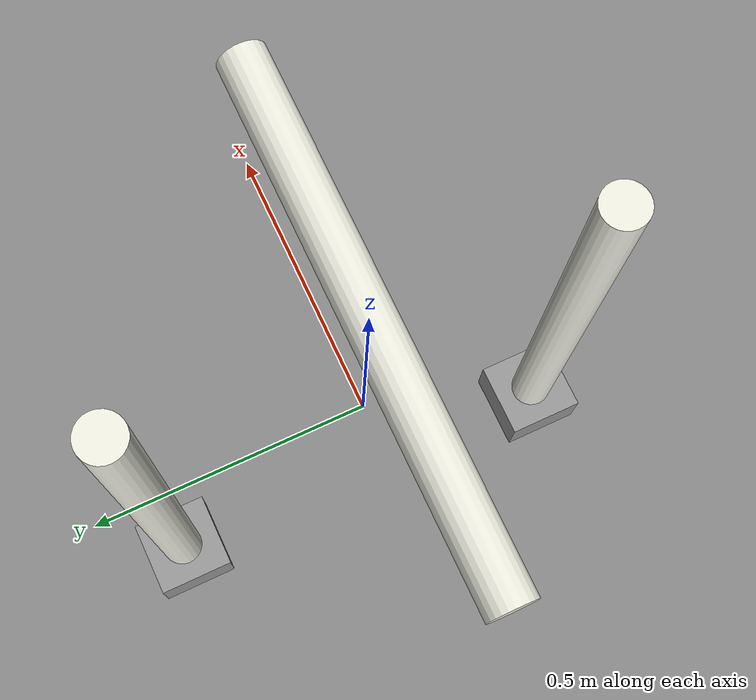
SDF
<?xml version="1.0" ?>
<sdf version="1.8">
  <model name="underwater_gate">
    <static>true</static>
    <pose>0 0 0 0 0 0</pose>

    <!-- Left Vertical Post -->
    <link name="left_post">
      <pose>0 -0.4 0 0 0 0</pose>
      <collision name="left_post_collision">
        <geometry>
          <cylinder>
            <radius>0.04</radius>
            <length>1.0</length>
          </cylinder>
        </geometry>
      </collision>
      <visual name="left_post_visual">
        <geometry>
          <cylinder>
            <radius>0.04</radius>
            <length>1.0</length>
          </cylinder>
        </geometry>
        <material>
          <ambient>0.95 0.95 0.9 1</ambient>
          <diffuse>0.95 0.95 0.9 1</diffuse>
          <specular>0.3 0.3 0.3 1</specular>
        </material>
      </visual>
      <inertial>
        <mass>5.0</mass>
        <inertia>
          <ixx>0.42</ixx>
          <iyy>0.42</iyy>
          <izz>0.008</izz>
          <ixy>0</ixy>
          <ixz>0</ixz>
          <iyz>0</iyz>
        </inertia>
      </inertial>
    </link>

    <!-- Right Vertical Post -->
    <link name="right_post">
      <pose>0 0.4 0 0 0 0</pose>
      <collision name="right_post_collision">
        <geometry>
          <cylinder>
            <radius>0.04</radius>
            <length>1.0</length>
          </cylinder>
        </geometry>
      </collision>
      <visual name="right_post_visual">
        <geometry>
          <cylinder>
            <radius>0.04</radius>
            <length>1.0</length>
          </cylinder>
        </geometry>
        <material>
          <ambient>0.95 0.95 0.9 1</ambient>
          <diffuse>0.95 0.95 0.9 1</diffuse>
          <specular>0.3 0.3 0.3 1</specular>
        </material>
      </visual>
      <inertial>
        <mass>5.0</mass>
        <inertia>
          <ixx>0.42</ixx>
          <iyy>0.42</iyy>
          <izz>0.008</izz>
          <ixy>0</ixy>
          <ixz>0</ixz>
          <iyz>0</iyz>
        </inertia>
      </inertial>
    </link>

    <!-- Top Horizontal Bar -->
    <link name="top_bar">
      <pose>0 0 0.5 0 1.5708 0</pose>
      <collision name="top_bar_collision">
        <geometry>
          <cylinder>
            <radius>0.04</radius>
            <length>0.88</length>
          </cylinder>
        </geometry>
      </collision>
      <visual name="top_bar_visual">
        <geometry>
          <cylinder>
            <radius>0.04</radius>
            <length>0.88</length>
          </cylinder>
        </geometry>
        <material>
          <ambient>0.95 0.95 0.9 1</ambient>
          <diffuse>0.95 0.95 0.9 1</diffuse>
          <specular>0.3 0.3 0.3 1</specular>
        </material>
      </visual>
      <inertial>
        <mass>3.0</mass>
        <inertia>
          <ixx>0.02</ixx>
          <iyy>0.195</iyy>
          <izz>0.195</izz>
          <ixy>0</ixy>
          <ixz>0</ixz>
          <iyz>0</iyz>
        </inertia>
      </inertial>
    </link>

    <!-- Base Weights for Stability -->
    <link name="left_base">
      <pose>0 -0.4 -0.55 0 0 0</pose>
      <collision name="left_base_collision">
        <geometry>
          <box>
            <size>0.15 0.15 0.1</size>
          </box>
        </geometry>
      </collision>
      <visual name="left_base_visual">
        <geometry>
          <box>
            <size>0.15 0.15 0.1</size>
          </box>
        </geometry>
        <material>
          <ambient>0.5 0.5 0.5 1</ambient>
          <diffuse>0.6 0.6 0.6 1</diffuse>
          <specular>0.2 0.2 0.2 1</specular>
        </material>
      </visual>
      <inertial>
        <mass>10.0</mass>
        <inertia>
          <ixx>0.041</ixx>
          <iyy>0.041</iyy>
          <izz>0.0375</izz>
          <ixy>0</ixy>
          <ixz>0</ixz>
          <iyz>0</iyz>
        </inertia>
      </inertial>
    </link>

    <link name="right_base">
      <pose>0 0.4 -0.55 0 0 0</pose>
      <collision name="right_base_collision">
        <geometry>
          <box>
            <size>0.15 0.15 0.1</size>
          </box>
        </geometry>
      </collision>
      <visual name="right_base_visual">
        <geometry>
          <box>
            <size>0.15 0.15 0.1</size>
          </box>
        </geometry>
        <material>
          <ambient>0.5 0.5 0.5 1</ambient>
          <diffuse>0.6 0.6 0.6 1</diffuse>
          <specular>0.2 0.2 0.2 1</specular>
        </material>
      </visual>
      <inertial>
        <mass>10.0</mass>
        <inertia>
          <ixx>0.041</ixx>
          <iyy>0.041</iyy>
          <izz>0.0375</izz>
          <ixy>0</ixy>
          <ixz>0</ixz>
          <iyz>0</iyz>
        </inertia>
      </inertial>
    </link>

    <!-- Joints -->
    <joint name="left_post_to_base" type="fixed">
      <parent>left_base</parent>
      <child>left_post</child>
    </joint>

    <joint name="right_post_to_base" type="fixed">
      <parent>right_base</parent>
      <child>right_post</child>
    </joint>

    <joint name="top_bar_to_left" type="fixed">
      <parent>left_post</parent>
      <child>top_bar</child>
    </joint>

  </model>
</sdf>
